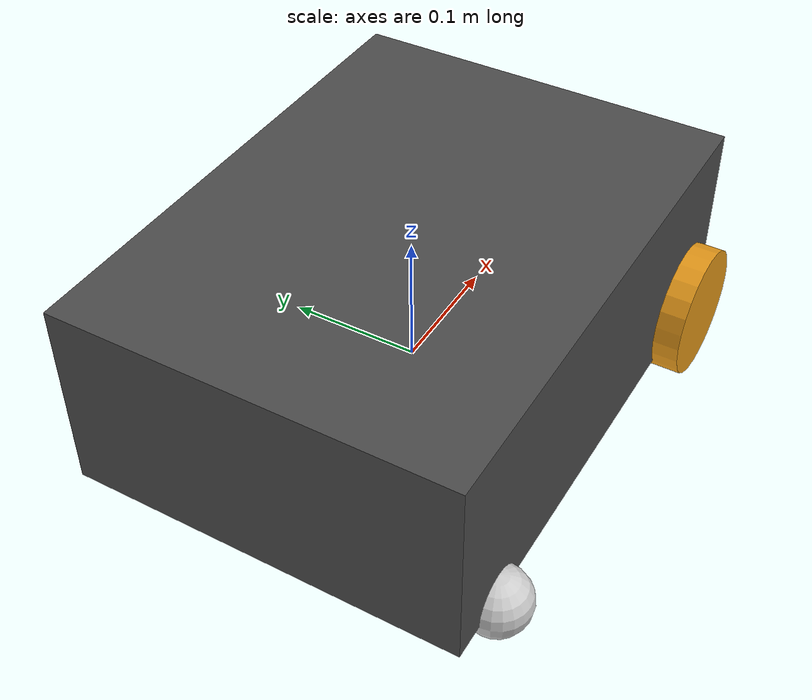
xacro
<?xml version="1.0"?>
<robot xmlns:xacro="http://www.ros.org/wiki/xacro" >

<!-- Materials (used for RViz display) -->
<material name="chassis_grey">
    <color rgba="0.3 0.3 0.3 1.0"/>
</material>
<material name="wheel_orange">
    <color rgba="0.9 0.6 0.1 1.0"/>
</material>
<material name="caster_silver">
    <color rgba="0.8 0.8 0.8 1.0"/>
</material>

<!-- Properties:  -->
<xacro:property name="chassis_length" value="0.40"/>
<xacro:property name="chassis_width"  value="0.30"/>
<xacro:property name="chassis_height" value="0.15"/>
<xacro:property name="chassis_mass"   value="5.0"/>

<xacro:property name="wheel_radius" value="0.05"/>
<xacro:property name="wheel_width"  value="0.04"/>
<xacro:property name="wheel_mass"   value="0.3"/>

<xacro:property name="wheel_separation" value="0.30"/> <!-- left-right distance between wheel centers -->
<xacro:property name="wheelbase"        value="0.30"/> <!-- front-to-back distance between axles -->

<xacro:property name="caster_radius" value="0.025"/>
<xacro:property name="caster_mass"   value="0.1"/>

  <!-- Reusable inertia macros -->
  <xacro:macro name="box_inertia" params="mass x y z">
    <inertial>
      <mass value="${mass}"/>
      <inertia
        ixx="${(mass/12.0)*(y*y+z*z)}" ixy="0.0" ixz="0.0"
        iyy="${(mass/12.0)*(x*x+z*z)}" iyz="0.0"
        izz="${(mass/12.0)*(x*x+y*y)}"/>
    </inertial>
  </xacro:macro>

  <xacro:macro name="cylinder_inertia" params="mass r h">
    <inertial>
      <mass value="${mass}"/>
      <inertia
        ixx="${(mass/12.0)*(3*r*r+h*h)}" ixy="0.0" ixz="0.0"
        iyy="${(mass/12.0)*(3*r*r+h*h)}" iyz="0.0"
        izz="${(mass/2.0)*(r*r)}"/>
    </inertial>
  </xacro:macro>

  <!-- Solid sphere inertia: I = (2/5) * m * r^2 for all three axes -->
  <xacro:macro name="sphere_inertia" params="mass r">
    <inertial>
      <mass value="${mass}"/>
      <inertia
        ixx="${(2.0/5.0)*mass*r*r}" ixy="0.0" ixz="0.0"
        iyy="${(2.0/5.0)*mass*r*r}" iyz="0.0"
        izz="${(2.0/5.0)*mass*r*r}"/>
    </inertial>
  </xacro:macro>

  <!-- base_footprint (ground-projected origin) + base_link (chassis body) -->
  <!-- Standard ROS2 convention: base_footprint sits at ground level, -->
  <!-- base_link is offset up by one wheel radius.                   -->
  <link name="base_footprint"/>

  <joint name="base_joint" type="fixed">
    <parent link="base_footprint"/>
    <child link="base_link"/>
    <origin xyz="0 0 ${wheel_radius}" rpy="0 0 0"/>
  </joint>

  <link name="base_link">
    <visual>
      <origin xyz="0 0 0" rpy="0 0 0"/>
      <geometry>
        <box size="${chassis_length} ${chassis_width} ${chassis_height}"/>
      </geometry>
      <material name="chassis_grey"/>
    </visual>
    <collision>
      <origin xyz="0 0 0" rpy="0 0 0"/>
      <geometry>
        <box size="${chassis_length} ${chassis_width} ${chassis_height}"/>
      </geometry>
    </collision>
    <xacro:box_inertia mass="${chassis_mass}" x="${chassis_length}" y="${chassis_width}" z="${chassis_height}"/>
  </link>

  <gazebo reference="base_link">
    <material>Gazebo/Grey</material>
  </gazebo>

  <!-- Wheel macro                                                   -->
  <!-- Every wheel gets identical visual/collision/inertial/joint    -->
  <!-- structure. Whether a wheel is actually "driven" is decided    -->
  <!-- ONLY by whether its joint name is referenced by the Gazebo    -->
  <!-- diff_drive plugin below - rear wheels get a normal continuous-->
  <!-- joint with no plugin attached, so they spin freely under      -->
  <!-- rolling friction as the robot moves, exactly like an unpowered-->
  <!-- axle.                                                          -->
  <xacro:macro name="wheel" params="prefix x_pos y_pos">
    <link name="${prefix}_wheel_link">
      <visual>
        <origin xyz="0 0 0" rpy="${pi/2} 0 0"/>
        <geometry>
          <cylinder radius="${wheel_radius}" length="${wheel_width}"/>
        </geometry>
        <material name="wheel_orange"/>
      </visual>
      <collision>
        <origin xyz="0 0 0" rpy="${pi/2} 0 0"/>
        <geometry>
          <cylinder radius="${wheel_radius}" length="${wheel_width}"/>
        </geometry>
      </collision>
      <xacro:cylinder_inertia mass="${wheel_mass}" r="${wheel_radius}" h="${wheel_width}"/>
    </link>

    <joint name="${prefix}_wheel_joint" type="continuous">
      <parent link="base_link"/>
      <child link="${prefix}_wheel_link"/>
      <origin xyz="${x_pos} ${y_pos} -${wheel_radius}" rpy="0 0 0"/>
      <axis xyz="0 1 0"/>
      <dynamics damping="0.1" friction="0.0"/>
    </joint>

    <gazebo reference="${prefix}_wheel_link">
      <material>Gazebo/Black</material>
      <mu1>1.0</mu1>
      <mu2>1.0</mu2>
    </gazebo>
  </xacro:macro>

  <!-- FRONT wheels: these are the ones the diff_drive plugin actuates -->
  <xacro:wheel prefix="front_left"  x_pos="${wheelbase/2}"  y_pos="${wheel_separation/2}"/>
  <xacro:wheel prefix="front_right" x_pos="${wheelbase/2}"  y_pos="-${wheel_separation/2}"/>

  <!-- REAR wheels: identical joint type, but never referenced by the -->
  <!-- plugin below, so nothing ever commands them - they roll freely -->

  <!-- Rear caster macro                                             -->
  <!-- A caster is modeled as a simple sphere with very low friction -->
  <!-- and a FIXED joint (no motor, no rotation axis needed) a    -->
  <!-- sphere's shape lets it slide/scrub in any direction under low -->
  <!-- friction, which is what a real swivel caster does, without    -->
  <!-- needing to model the actual swivel mechanism.                 -->
  <xacro:macro name="caster" params="prefix x_pos y_pos">
    <link name="${prefix}_caster_link">
      <visual>
        <origin xyz="0 0 0" rpy="0 0 0"/>
        <geometry>
          <sphere radius="${caster_radius}"/>
        </geometry>
        <material name="caster_silver"/>
      </visual>
      <collision>
        <origin xyz="0 0 0" rpy="0 0 0"/>
        <geometry>
          <sphere radius="${caster_radius}"/>
        </geometry>
      </collision>
      <xacro:sphere_inertia mass="${caster_mass}" r="${caster_radius}"/>
    </link>

    <joint name="${prefix}_caster_joint" type="fixed">
      <parent link="base_link"/>
      <child link="${prefix}_caster_link"/>
      <origin xyz="${x_pos} ${y_pos} ${-(wheel_radius+caster_radius)}" rpy="0 0 0"/>
    </joint>

    <gazebo reference="${prefix}_caster_link">
      <material>Gazebo/Grey</material>
      <mu1>0.01</mu1>
      <mu2>0.01</mu2>
    </gazebo>
  </xacro:macro>

  <!-- Rear casters: replace the old rear_left/rear_right wheels -->
  <xacro:caster prefix="rear_left"  x_pos="-${wheelbase/2}" y_pos="${wheel_separation/2}"/>
  <xacro:caster prefix="rear_right" x_pos="-${wheelbase/2}" y_pos="-${wheel_separation/2}"/>

  <!-- Gazebo differential drive plugin                              -->
  <gazebo>
    <plugin filename="gz-sim-diff-drive-system" name="gz::sim::systems::DiffDrive">
    <left_joint>front_left_wheel_joint</left_joint>
    <right_joint>front_right_wheel_joint</right_joint>
    <wheel_separation>${wheel_separation}</wheel_separation>
    <wheel_radius>${wheel_radius}</wheel_radius>
    <odom_publish_frequency>30</odom_publish_frequency>
    <topic>cmd_vel</topic>
    <odom_topic>odom</odom_topic>
    <frame_id>odom</frame_id>
    <child_frame_id>base_footprint</child_frame_id>
  </plugin>

  <plugin filename="gz-sim-joint-state-publisher-system" name="gz::sim::systems::JointStatePublisher">
    <joint_name>front_left_wheel_joint</joint_name>
    <joint_name>front_right_wheel_joint</joint_name>
  </plugin>
  </gazebo>

</robot>
